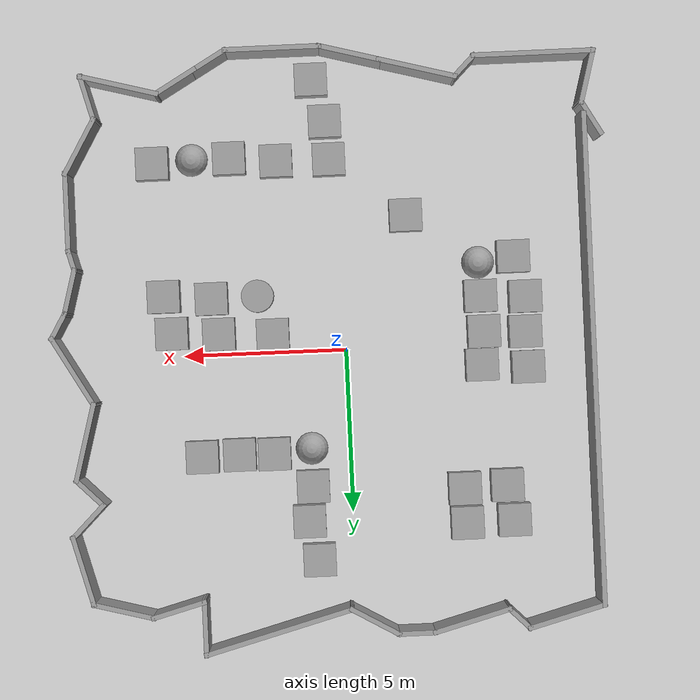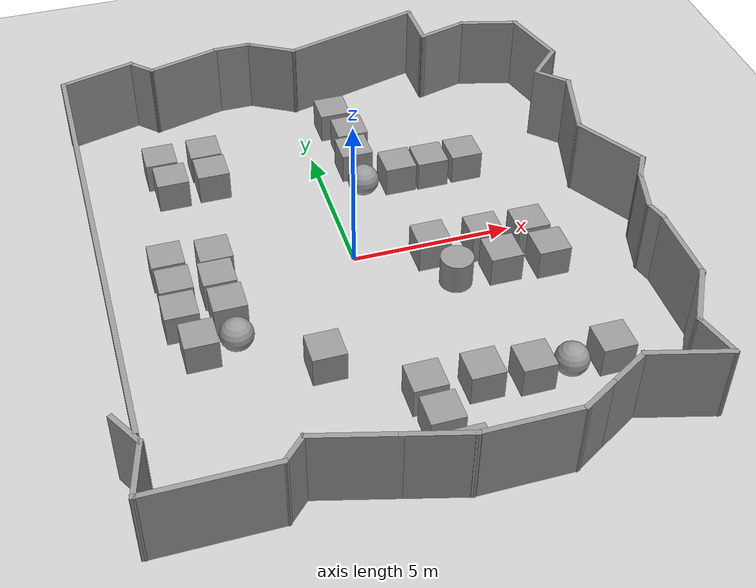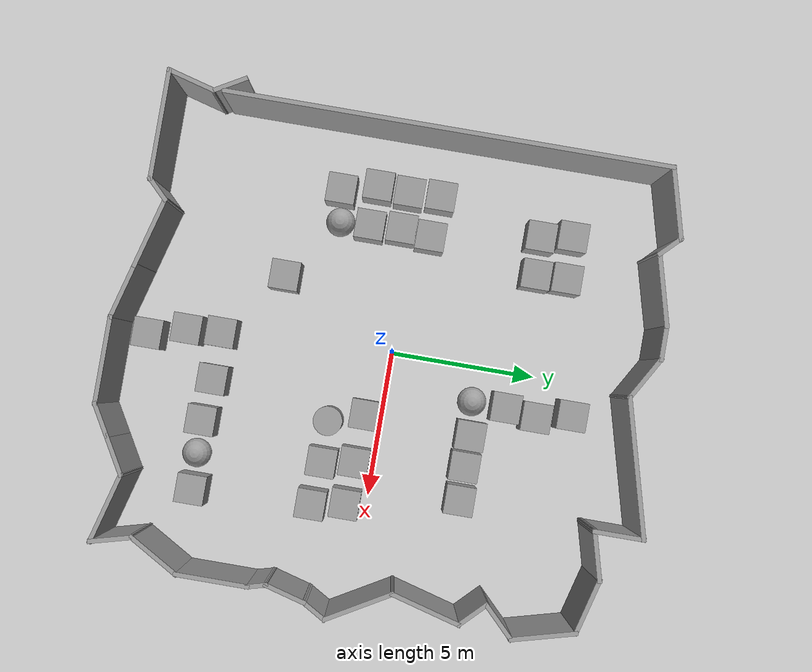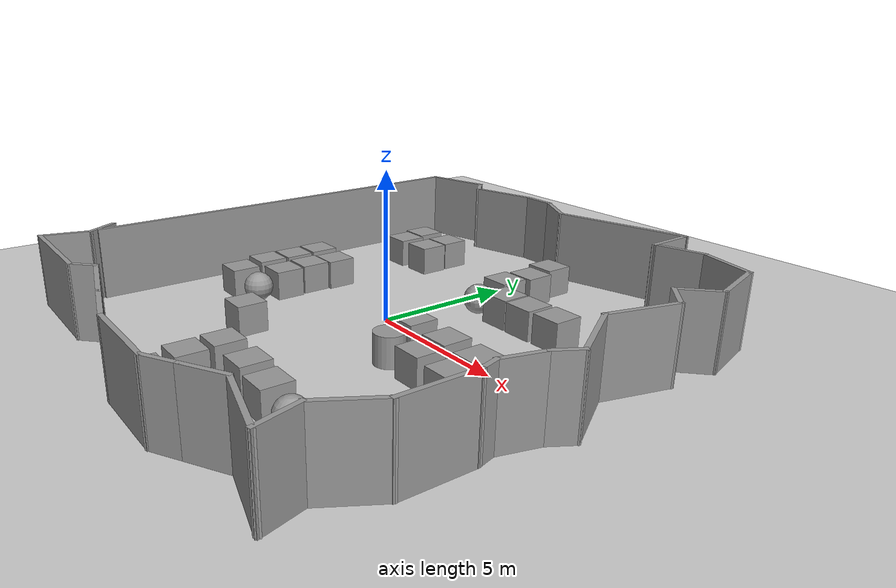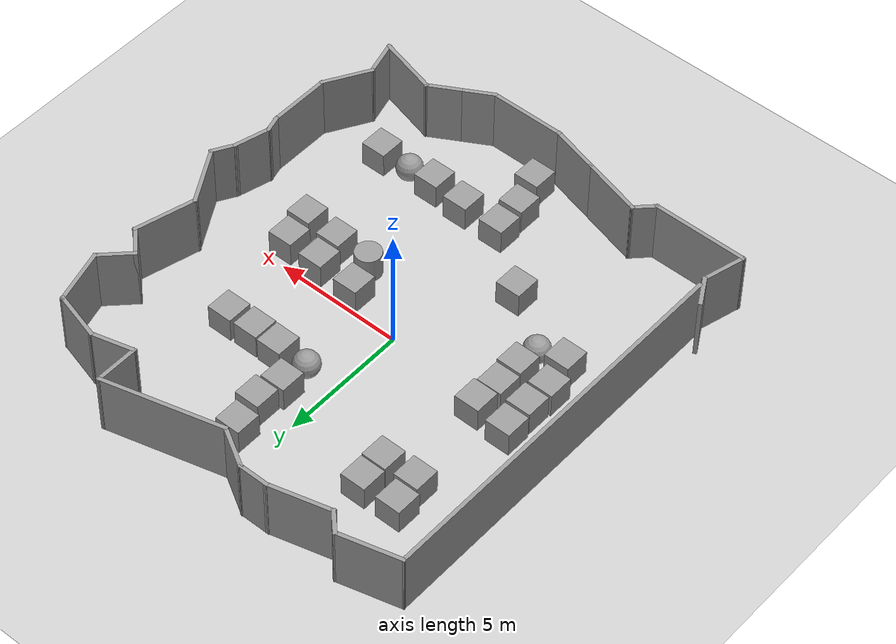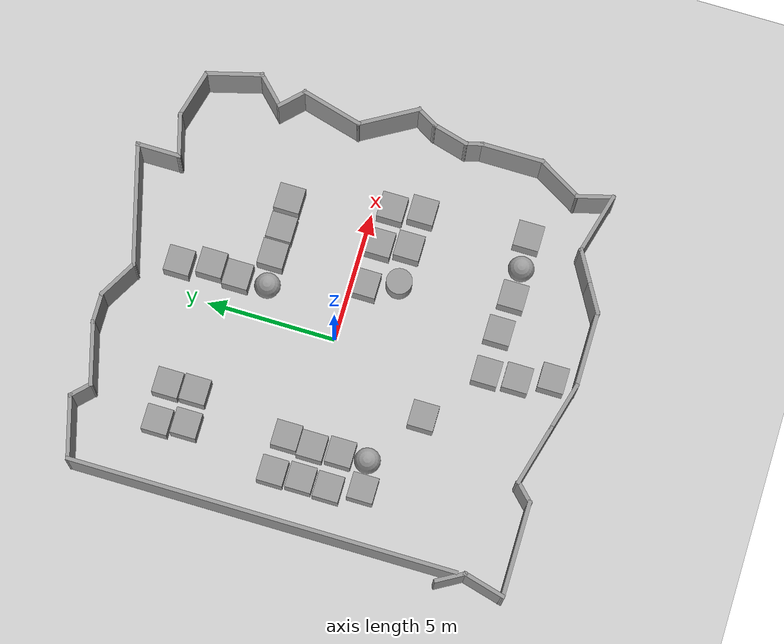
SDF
<sdf version="1.7">
 <world name="simple">
  <plugin name="gazebo_ros_state" filename="libgazebo_ros_state.so"><update_rate>60</update_rate></plugin>
  <light name="sun" type="directional">
   <pose>0 0 10 0 -0 0</pose>
   <diffuse>0.8 0.8 0.8 1</diffuse>
   <specular>0.2 0.2 0.2 1</specular>
   <attenuation>
    <range>1000</range>
    <constant>0.9</constant>
    <linear>0.01</linear>
    <quadratic>0.001</quadratic>
   </attenuation>
   <direction>-0.5 0.1 -0.9</direction>
   <spot><inner_angle>0</inner_angle><outer_angle>0</outer_angle><falloff>0</falloff></spot>
  </light>
  <model name="ground_plane">
   <static>1</static>
   <link name="link">
    <collision name="collision">
     <geometry><plane><normal>0 0 1</normal><size>100 100</size></plane></geometry>
     <surface><friction><ode><mu>100</mu><mu2>50</mu2></ode></friction></surface>
    </collision>
    <visual name="visual">
     <cast_shadows>0</cast_shadows>
     <geometry><plane><normal>0 0 1</normal><size>100 100</size></plane></geometry>
     <material>
      <script><uri>file://media/materials/scripts/gazebo.material</uri><name>Gazebo/Grey</name></script>
     </material>
    </visual>
   </link>
  </model>
  <gravity>0 0 -9.8</gravity>
  <magnetic_field>6e-06 2.3e-05 -4.2e-05</magnetic_field>
  <atmosphere type="adiabatic"/>
  <physics type="ode">
   <max_step_size>0.001</max_step_size>
   <real_time_factor>1</real_time_factor>
   <real_time_update_rate>1000</real_time_update_rate>
  </physics>
  <scene><ambient>0.4 0.4 0.4 1</ambient><background>0.7 0.7 0.7 1</background><shadows>1</shadows></scene>
  <audio><device>default</device></audio>
  <spherical_coordinates>
   <surface_model>EARTH_WGS84</surface_model>
   <latitude_deg>43.5655</latitude_deg>
   <longitude_deg>1.474</longitude_deg>
   <elevation>150</elevation>
   <heading_deg>180</heading_deg>
  </spherical_coordinates>
  <model name="unit_box">
   <pose>1.09447 6.4086 0.5 0 -0 0</pose>
   <link name="link">
    <inertial>
     <mass>1</mass>
     <inertia>
      <ixx>0.166667</ixx>
      <ixy>0</ixy>
      <ixz>0</ixz>
      <iyy>0.166667</iyy>
      <iyz>0</iyz>
      <izz>0.166667</izz>
     </inertia>
    </inertial>
    <collision name="collision"><geometry><box><size>1 1 1</size></box></geometry></collision>
    <visual name="visual">
     <geometry><box><size>1 1 1</size></box></geometry>
     <material>
      <script><name>Gazebo/Grey</name><uri>file://media/materials/scripts/gazebo.material</uri></script>
     </material>
    </visual>
   </link>
  </model>
  <model name="unit_box_clone">
   <pose>1.35441 5.21111 0.5 0 -0 0</pose>
   <link name="link">
    <inertial>
     <mass>1</mass>
     <inertia>
      <ixx>0.166667</ixx>
      <ixy>0</ixy>
      <ixz>0</ixz>
      <iyy>0.166667</iyy>
      <iyz>0</iyz>
      <izz>0.166667</izz>
     </inertia>
    </inertial>
    <collision name="collision"><geometry><box><size>1 1 1</size></box></geometry></collision>
    <visual name="visual">
     <geometry><box><size>1 1 1</size></box></geometry>
     <material>
      <script><name>Gazebo/Grey</name><uri>file://media/materials/scripts/gazebo.material</uri></script>
     </material>
    </visual>
   </link>
  </model>
  <model name="unit_box_clone_0">
   <pose>1.20117 4.14572 0.5 0 -0 0</pose>
   <link name="link">
    <inertial>
     <mass>1</mass>
     <inertia>
      <ixx>0.166667</ixx>
      <ixy>0</ixy>
      <ixz>0</ixz>
      <iyy>0.166667</iyy>
      <iyz>0</iyz>
      <izz>0.166667</izz>
     </inertia>
    </inertial>
    <collision name="collision"><geometry><box><size>1 1 1</size></box></geometry></collision>
    <visual name="visual">
     <geometry><box><size>1 1 1</size></box></geometry>
     <material>
      <script><name>Gazebo/Grey</name><uri>file://media/materials/scripts/gazebo.material</uri></script>
     </material>
    </visual>
   </link>
  </model>
  <model name="unit_box_clone_2">
   <pose>2.34551 3.10228 0.5 0 -0 0</pose>
   <link name="link">
    <inertial>
     <mass>1</mass>
     <inertia>
      <ixx>0.166667</ixx>
      <ixy>0</ixy>
      <ixz>0</ixz>
      <iyy>0.166667</iyy>
      <iyz>0</iyz>
      <izz>0.166667</izz>
     </inertia>
    </inertial>
    <collision name="collision"><geometry><box><size>1 1 1</size></box></geometry></collision>
    <visual name="visual">
     <geometry><box><size>1 1 1</size></box></geometry>
     <material>
      <script><name>Gazebo/Grey</name><uri>file://media/materials/scripts/gazebo.material</uri></script>
     </material>
    </visual>
   </link>
  </model>
  <model name="unit_box_clone_3">
   <pose>3.41569 3.08183 0.5 0 -0 0</pose>
   <link name="link">
    <inertial>
     <mass>1</mass>
     <inertia>
      <ixx>0.166667</ixx>
      <ixy>0</ixy>
      <ixz>0</ixz>
      <iyy>0.166667</iyy>
      <iyz>0</iyz>
      <izz>0.166667</izz>
     </inertia>
    </inertial>
    <collision name="collision"><geometry><box><size>1 1 1</size></box></geometry></collision>
    <visual name="visual">
     <geometry><box><size>1 1 1</size></box></geometry>
     <material>
      <script><name>Gazebo/Grey</name><uri>file://media/materials/scripts/gazebo.material</uri></script>
     </material>
    </visual>
   </link>
  </model>
  <model name="unit_box_clone_4">
   <pose>4.56225 3.10641 0.5 0 -0 0</pose>
   <link name="link">
    <inertial>
     <mass>1</mass>
     <inertia>
      <ixx>0.166667</ixx>
      <ixy>0</ixy>
      <ixz>0</ixz>
      <iyy>0.166667</iyy>
      <iyz>0</iyz>
      <izz>0.166667</izz>
     </inertia>
    </inertial>
    <collision name="collision"><geometry><box><size>1 1 1</size></box></geometry></collision>
    <visual name="visual">
     <geometry><box><size>1 1 1</size></box></geometry>
     <material>
      <script><name>Gazebo/Grey</name><uri>file://media/materials/scripts/gazebo.material</uri></script>
     </material>
    </visual>
   </link>
  </model>
  <model name="unit_box_clone_5">
   <pose>5.34068 -0.717246 0.5 0 -0 0</pose>
   <link name="link">
    <inertial>
     <mass>1</mass>
     <inertia>
      <ixx>0.166667</ixx>
      <ixy>0</ixy>
      <ixz>0</ixz>
      <iyy>0.166667</iyy>
      <iyz>0</iyz>
      <izz>0.166667</izz>
     </inertia>
    </inertial>
    <collision name="collision"><geometry><box><size>1 1 1</size></box></geometry></collision>
    <visual name="visual">
     <geometry><box><size>1 1 1</size></box></geometry>
     <material>
      <script><name>Gazebo/Grey</name><uri>file://media/materials/scripts/gazebo.material</uri></script>
     </material>
    </visual>
   </link>
  </model>
  <model name="unit_box_clone_6">
   <pose>5.54501 -1.86094 0.5 0 -0 0</pose>
   <link name="link">
    <inertial>
     <mass>1</mass>
     <inertia>
      <ixx>0.166667</ixx>
      <ixy>0</ixy>
      <ixz>0</ixz>
      <iyy>0.166667</iyy>
      <iyz>0</iyz>
      <izz>0.166667</izz>
     </inertia>
    </inertial>
    <collision name="collision"><geometry><box><size>1 1 1</size></box></geometry></collision>
    <visual name="visual">
     <geometry><box><size>1 1 1</size></box></geometry>
     <material>
      <script><name>Gazebo/Grey</name><uri>file://media/materials/scripts/gazebo.material</uri></script>
     </material>
    </visual>
   </link>
  </model>
  <model name="unit_box_clone_7">
   <pose>3.89664 -0.641551 0.5 0 -0 0</pose>
   <link name="link">
    <inertial>
     <mass>1</mass>
     <inertia>
      <ixx>0.166667</ixx>
      <ixy>0</ixy>
      <ixz>0</ixz>
      <iyy>0.166667</iyy>
      <iyz>0</iyz>
      <izz>0.166667</izz>
     </inertia>
    </inertial>
    <collision name="collision"><geometry><box><size>1 1 1</size></box></geometry></collision>
    <visual name="visual">
     <geometry><box><size>1 1 1</size></box></geometry>
     <material>
      <script><name>Gazebo/Grey</name><uri>file://media/materials/scripts/gazebo.material</uri></script>
     </material>
    </visual>
   </link>
  </model>
  <model name="unit_box_clone_8">
   <pose>2.24404 -0.554472 0.5 0 -0 0</pose>
   <link name="link">
    <inertial>
     <mass>1</mass>
     <inertia>
      <ixx>0.166667</ixx>
      <ixy>0</ixy>
      <ixz>0</ixz>
      <iyy>0.166667</iyy>
      <iyz>0</iyz>
      <izz>0.166667</izz>
     </inertia>
    </inertial>
    <collision name="collision"><geometry><box><size>1 1 1</size></box></geometry></collision>
    <visual name="visual">
     <geometry><box><size>1 1 1</size></box></geometry>
     <material>
      <script><name>Gazebo/Grey</name><uri>file://media/materials/scripts/gazebo.material</uri></script>
     </material>
    </visual>
   </link>
  </model>
  <model name="unit_box_clone_9">
   <pose>4.0808 -1.73862 0.5 0 -0 0</pose>
   <link name="link">
    <inertial>
     <mass>1</mass>
     <inertia>
      <ixx>0.166667</ixx>
      <ixy>0</ixy>
      <ixz>0</ixz>
      <iyy>0.166667</iyy>
      <iyz>0</iyz>
      <izz>0.166667</izz>
     </inertia>
    </inertial>
    <collision name="collision"><geometry><box><size>1 1 1</size></box></geometry></collision>
    <visual name="visual">
     <geometry><box><size>1 1 1</size></box></geometry>
     <material>
      <script><name>Gazebo/Grey</name><uri>file://media/materials/scripts/gazebo.material</uri></script>
     </material>
    </visual>
   </link>
  </model>
  <model name="unit_box_clone_11">
   <pose>5.7245 -5.95763 0.5 0 -0 0</pose>
   <link name="link">
    <inertial>
     <mass>1</mass>
     <inertia>
      <ixx>0.166667</ixx>
      <ixy>0</ixy>
      <ixz>0</ixz>
      <iyy>0.166667</iyy>
      <iyz>0</iyz>
      <izz>0.166667</izz>
     </inertia>
    </inertial>
    <collision name="collision"><geometry><box><size>1 1 1</size></box></geometry></collision>
    <visual name="visual">
     <geometry><box><size>1 1 1</size></box></geometry>
     <material>
      <script><name>Gazebo/Grey</name><uri>file://media/materials/scripts/gazebo.material</uri></script>
     </material>
    </visual>
   </link>
  </model>
  <model name="unit_box_clone_13">
   <pose>3.36205 -6.0208 0.5 0 -0 0</pose>
   <link name="link">
    <inertial>
     <mass>1</mass>
     <inertia>
      <ixx>0.166667</ixx>
      <ixy>0</ixy>
      <ixz>0</ixz>
      <iyy>0.166667</iyy>
      <iyz>0</iyz>
      <izz>0.166667</izz>
     </inertia>
    </inertial>
    <collision name="collision"><geometry><box><size>1 1 1</size></box></geometry></collision>
    <visual name="visual">
     <geometry><box><size>1 1 1</size></box></geometry>
     <material>
      <script><name>Gazebo/Grey</name><uri>file://media/materials/scripts/gazebo.material</uri></script>
     </material>
    </visual>
   </link>
  </model>
  <model name="unit_box_clone_14">
   <pose>1.9274 -5.88453 0.5 0 -0 0</pose>
   <link name="link">
    <inertial>
     <mass>1</mass>
     <inertia>
      <ixx>0.166667</ixx>
      <ixy>0</ixy>
      <ixz>0</ixz>
      <iyy>0.166667</iyy>
      <iyz>0</iyz>
      <izz>0.166667</izz>
     </inertia>
    </inertial>
    <collision name="collision"><geometry><box><size>1 1 1</size></box></geometry></collision>
    <visual name="visual">
     <geometry><box><size>1 1 1</size></box></geometry>
     <material>
      <script><name>Gazebo/Grey</name><uri>file://media/materials/scripts/gazebo.material</uri></script>
     </material>
    </visual>
   </link>
  </model>
  <model name="unit_box_clone_15">
   <pose>0.303527 -5.86364 0.5 0 -0 0</pose>
   <link name="link">
    <inertial>
     <mass>1</mass>
     <inertia>
      <ixx>0.166667</ixx>
      <ixy>0</ixy>
      <ixz>0</ixz>
      <iyy>0.166667</iyy>
      <iyz>0</iyz>
      <izz>0.166667</izz>
     </inertia>
    </inertial>
    <collision name="collision"><geometry><box><size>1 1 1</size></box></geometry></collision>
    <visual name="visual">
     <geometry><box><size>1 1 1</size></box></geometry>
     <material>
      <script><name>Gazebo/Grey</name><uri>file://media/materials/scripts/gazebo.material</uri></script>
     </material>
    </visual>
   </link>
  </model>
  <model name="unit_box_clone_16">
   <pose>0.381954 -7.03221 0.5 0 -0 0</pose>
   <link name="link">
    <inertial>
     <mass>1</mass>
     <inertia>
      <ixx>0.166667</ixx>
      <ixy>0</ixy>
      <ixz>0</ixz>
      <iyy>0.166667</iyy>
      <iyz>0</iyz>
      <izz>0.166667</izz>
     </inertia>
    </inertial>
    <collision name="collision"><geometry><box><size>1 1 1</size></box></geometry></collision>
    <visual name="visual">
     <geometry><box><size>1 1 1</size></box></geometry>
     <material>
      <script><name>Gazebo/Grey</name><uri>file://media/materials/scripts/gazebo.material</uri></script>
     </material>
    </visual>
   </link>
  </model>
  <model name="unit_box_clone_17">
   <pose>0.751216 -8.3232 0.5 0 -0 0</pose>
   <link name="link">
    <inertial>
     <mass>1</mass>
     <inertia>
      <ixx>0.166667</ixx>
      <ixy>0</ixy>
      <ixz>0</ixz>
      <iyy>0.166667</iyy>
      <iyz>0</iyz>
      <izz>0.166667</izz>
     </inertia>
    </inertial>
    <collision name="collision"><geometry><box><size>1 1 1</size></box></geometry></collision>
    <visual name="visual">
     <geometry><box><size>1 1 1</size></box></geometry>
     <material>
      <script><name>Gazebo/Grey</name><uri>file://media/materials/scripts/gazebo.material</uri></script>
     </material>
    </visual>
   </link>
  </model>
  <model name="unit_box_clone_18">
   <pose>-4.13638 0.632269 0.5 0 -0 0</pose>
   <link name="link">
    <inertial>
     <mass>1</mass>
     <inertia>
      <ixx>0.166667</ixx>
      <ixy>0</ixy>
      <ixz>0</ixz>
      <iyy>0.166667</iyy>
      <iyz>0</iyz>
      <izz>0.166667</izz>
     </inertia>
    </inertial>
    <collision name="collision"><geometry><box><size>1 1 1</size></box></geometry></collision>
    <visual name="visual">
     <geometry><box><size>1 1 1</size></box></geometry>
     <material>
      <script><name>Gazebo/Grey</name><uri>file://media/materials/scripts/gazebo.material</uri></script>
     </material>
    </visual>
   </link>
  </model>
  <model name="unit_box_clone_19">
   <pose>-4.23779 -0.390968 0.5 0 -0 0</pose>
   <link name="link">
    <inertial>
     <mass>1</mass>
     <inertia>
      <ixx>0.166667</ixx>
      <ixy>0</ixy>
      <ixz>0</ixz>
      <iyy>0.166667</iyy>
      <iyz>0</iyz>
      <izz>0.166667</izz>
     </inertia>
    </inertial>
    <collision name="collision"><geometry><box><size>1 1 1</size></box></geometry></collision>
    <visual name="visual">
     <geometry><box><size>1 1 1</size></box></geometry>
     <material>
      <script><name>Gazebo/Grey</name><uri>file://media/materials/scripts/gazebo.material</uri></script>
     </material>
    </visual>
   </link>
  </model>
  <model name="unit_box_clone_20">
   <pose>-4.17367 -1.47802 0.5 0 -0 0</pose>
   <link name="link">
    <inertial>
     <mass>1</mass>
     <inertia>
      <ixx>0.166667</ixx>
      <ixy>0</ixy>
      <ixz>0</ixz>
      <iyy>0.166667</iyy>
      <iyz>0</iyz>
      <izz>0.166667</izz>
     </inertia>
    </inertial>
    <collision name="collision"><geometry><box><size>1 1 1</size></box></geometry></collision>
    <visual name="visual">
     <geometry><box><size>1 1 1</size></box></geometry>
     <material>
      <script><name>Gazebo/Grey</name><uri>file://media/materials/scripts/gazebo.material</uri></script>
     </material>
    </visual>
   </link>
  </model>
  <model name="unit_box_clone_22">
   <pose>-5.22673 -2.64818 0.5 0 -0 0</pose>
   <link name="link">
    <inertial>
     <mass>1</mass>
     <inertia>
      <ixx>0.166667</ixx>
      <ixy>0</ixy>
      <ixz>0</ixz>
      <iyy>0.166667</iyy>
      <iyz>0</iyz>
      <izz>0.166667</izz>
     </inertia>
    </inertial>
    <collision name="collision"><geometry><box><size>1 1 1</size></box></geometry></collision>
    <visual name="visual">
     <geometry><box><size>1 1 1</size></box></geometry>
     <material>
      <script><name>Gazebo/Grey</name><uri>file://media/materials/scripts/gazebo.material</uri></script>
     </material>
    </visual>
   </link>
  </model>
  <model name="unit_box_clone_23">
   <pose>-5.54798 -1.40919 0.5 0 -0 0</pose>
   <link name="link">
    <inertial>
     <mass>1</mass>
     <inertia>
      <ixx>0.166667</ixx>
      <ixy>0</ixy>
      <ixz>0</ixz>
      <iyy>0.166667</iyy>
      <iyz>0</iyz>
      <izz>0.166667</izz>
     </inertia>
    </inertial>
    <collision name="collision"><geometry><box><size>1 1 1</size></box></geometry></collision>
    <visual name="visual">
     <geometry><box><size>1 1 1</size></box></geometry>
     <material>
      <script><name>Gazebo/Grey</name><uri>file://media/materials/scripts/gazebo.material</uri></script>
     </material>
    </visual>
   </link>
  </model>
  <model name="unit_box_clone_24">
   <pose>-5.50343 -0.332856 0.5 0 -0 0</pose>
   <link name="link">
    <inertial>
     <mass>1</mass>
     <inertia>
      <ixx>0.166667</ixx>
      <ixy>0</ixy>
      <ixz>0</ixz>
      <iyy>0.166667</iyy>
      <iyz>0</iyz>
      <izz>0.166667</izz>
     </inertia>
    </inertial>
    <collision name="collision"><geometry><box><size>1 1 1</size></box></geometry></collision>
    <visual name="visual">
     <geometry><box><size>1 1 1</size></box></geometry>
     <material>
      <script><name>Gazebo/Grey</name><uri>file://media/materials/scripts/gazebo.material</uri></script>
     </material>
    </visual>
   </link>
  </model>
  <model name="unit_box_clone_25">
   <pose>-5.54966 0.756641 0.5 0 -0 0</pose>
   <link name="link">
    <inertial>
     <mass>1</mass>
     <inertia>
      <ixx>0.166667</ixx>
      <ixy>0</ixy>
      <ixz>0</ixz>
      <iyy>0.166667</iyy>
      <iyz>0</iyz>
      <izz>0.166667</izz>
     </inertia>
    </inertial>
    <collision name="collision"><geometry><box><size>1 1 1</size></box></geometry></collision>
    <visual name="visual">
     <geometry><box><size>1 1 1</size></box></geometry>
     <material>
      <script><name>Gazebo/Grey</name><uri>file://media/materials/scripts/gazebo.material</uri></script>
     </material>
    </visual>
   </link>
  </model>
  <model name="unit_box_clone_26">
   <pose>-3.45012 4.40873 0.5 0 -0 0</pose>
   <link name="link">
    <inertial>
     <mass>1</mass>
     <inertia>
      <ixx>0.166667</ixx>
      <ixy>0</ixy>
      <ixz>0</ixz>
      <iyy>0.166667</iyy>
      <iyz>0</iyz>
      <izz>0.166667</izz>
     </inertia>
    </inertial>
    <collision name="collision"><geometry><box><size>1 1 1</size></box></geometry></collision>
    <visual name="visual">
     <geometry><box><size>1 1 1</size></box></geometry>
     <material>
      <script><name>Gazebo/Grey</name><uri>file://media/materials/scripts/gazebo.material</uri></script>
     </material>
    </visual>
   </link>
  </model>
  <model name="unit_box_clone_27">
   <pose>-3.48455 5.46324 0.5 0 -0 0</pose>
   <link name="link">
    <inertial>
     <mass>1</mass>
     <inertia>
      <ixx>0.166667</ixx>
      <ixy>0</ixy>
      <ixz>0</ixz>
      <iyy>0.166667</iyy>
      <iyz>0</iyz>
      <izz>0.166667</izz>
     </inertia>
    </inertial>
    <collision name="collision"><geometry><box><size>1 1 1</size></box></geometry></collision>
    <visual name="visual">
     <geometry><box><size>1 1 1</size></box></geometry>
     <material>
      <script><name>Gazebo/Grey</name><uri>file://media/materials/scripts/gazebo.material</uri></script>
     </material>
    </visual>
   </link>
  </model>
  <model name="unit_box_clone_28">
   <pose>-4.93112 5.4318 0.5 0 -0 0</pose>
   <link name="link">
    <inertial>
     <mass>1</mass>
     <inertia>
      <ixx>0.166667</ixx>
      <ixy>0</ixy>
      <ixz>0</ixz>
      <iyy>0.166667</iyy>
      <iyz>0</iyz>
      <izz>0.166667</izz>
     </inertia>
    </inertial>
    <collision name="collision"><geometry><box><size>1 1 1</size></box></geometry></collision>
    <visual name="visual">
     <geometry><box><size>1 1 1</size></box></geometry>
     <material>
      <script><name>Gazebo/Grey</name><uri>file://media/materials/scripts/gazebo.material</uri></script>
     </material>
    </visual>
   </link>
  </model>
  <model name="unit_box_clone_29">
   <pose>-4.75554 4.35696 0.5 0 -0 0</pose>
   <link name="link">
    <inertial>
     <mass>1</mass>
     <inertia>
      <ixx>0.166667</ixx>
      <ixy>0</ixy>
      <ixz>0</ixz>
      <iyy>0.166667</iyy>
      <iyz>0</iyz>
      <izz>0.166667</izz>
     </inertia>
    </inertial>
    <collision name="collision"><geometry><box><size>1 1 1</size></box></geometry></collision>
    <visual name="visual">
     <geometry><box><size>1 1 1</size></box></geometry>
     <material>
      <script><name>Gazebo/Grey</name><uri>file://media/materials/scripts/gazebo.material</uri></script>
     </material>
    </visual>
   </link>
  </model>
  <model name="Untitled">
   <pose>0.47596 -0.08968 0 0 -0 0</pose>
   <link name="Wall_10">
    <collision name="Wall_10_Collision">
     <geometry><box><size>1.75 0.15 2.5</size></box></geometry>
     <pose>0 0 1.25 0 -0 0</pose>
    </collision>
    <visual name="Wall_10_Visual">
     <pose>0 0 1.25 0 -0 0</pose>
     <geometry><box><size>1.75 0.15 2.5</size></box></geometry>
     <material>
      <script><uri>file://media/materials/scripts/gazebo.material</uri><name>Gazebo/Grey</name></script>
      <ambient>1 1 1 1</ambient>
     </material>
     <meta><layer>0</layer></meta>
    </visual>
    <pose>4.14914 8.31692 0 0 -0 -1.5708</pose>
   </link>
   <link name="Wall_11">
    <collision name="Wall_11_Collision">
     <geometry><box><size>1.75 0.15 2.5</size></box></geometry>
     <pose>0 0 1.25 0 -0 0</pose>
    </collision>
    <visual name="Wall_11_Visual">
     <pose>0 0 1.25 0 -0 0</pose>
     <geometry><box><size>1.75 0.15 2.5</size></box></geometry>
     <material>
      <script><uri>file://media/materials/scripts/gazebo.material</uri><name>Gazebo/Grey</name></script>
      <ambient>1 1 1 1</ambient>
     </material>
     <meta><layer>0</layer></meta>
    </visual>
    <pose>4.92188 7.72398 0 0 -0 0.261799</pose>
   </link>
   <link name="Wall_12">
    <collision name="Wall_12_Collision">
     <geometry><box><size>2 0.15 2.5</size></box></geometry>
     <pose>0 0 1.25 0 -0 0</pose>
    </collision>
    <visual name="Wall_12_Visual">
     <pose>0 0 1.25 0 -0 0</pose>
     <geometry><box><size>2 0.15 2.5</size></box></geometry>
     <material>
      <script><uri>file://media/materials/scripts/gazebo.material</uri><name>Gazebo/Grey</name></script>
      <ambient>1 1 1 1</ambient>
     </material>
     <meta><layer>0</layer></meta>
    </visual>
    <pose>6.58811 7.69162 0 0 -0 -0.261799</pose>
   </link>
   <link name="Wall_13">
    <collision name="Wall_13_Collision">
     <geometry><box><size>2.25 0.15 2.5</size></box></geometry>
     <pose>0 0 1.25 0 -0 0</pose>
    </collision>
    <visual name="Wall_13_Visual">
     <pose>0 0 1.25 0 -0 0</pose>
     <geometry><box><size>2.25 0.15 2.5</size></box></geometry>
     <material>
      <script><uri>file://media/materials/scripts/gazebo.material</uri><name>Gazebo/Grey</name></script>
      <ambient>1 1 1 1</ambient>
     </material>
     <meta><layer>0</layer></meta>
    </visual>
    <pose>7.75335 6.43799 0 0 -0 -1.309</pose>
   </link>
   <link name="Wall_14">
    <collision name="Wall_14_Collision">
     <geometry><box><size>1.5 0.15 2.5</size></box></geometry>
     <pose>0 0 1.25 0 -0 0</pose>
    </collision>
    <visual name="Wall_14_Visual">
     <pose>0 0 1.25 0 -0 0</pose>
     <geometry><box><size>1.5 0.15 2.5</size></box></geometry>
     <material>
      <script><uri>file://media/materials/scripts/gazebo.material</uri><name>Gazebo/Grey</name></script>
      <ambient>1 1 1 1</ambient>
     </material>
     <meta><layer>0</layer></meta>
    </visual>
    <pose>7.54781 4.94648 0 0 -0 -2.35619</pose>
   </link>
   <link name="Wall_15">
    <collision name="Wall_15_Collision">
     <geometry><box><size>1.25 0.15 2.5</size></box></geometry>
     <pose>0 0 1.25 0 -0 0</pose>
    </collision>
    <visual name="Wall_15_Visual">
     <pose>0 0 1.25 0 -0 0</pose>
     <geometry><box><size>1.25 0.15 2.5</size></box></geometry>
     <material>
      <script><uri>file://media/materials/scripts/gazebo.material</uri><name>Gazebo/Grey</name></script>
      <ambient>1 1 1 1</ambient>
     </material>
     <meta><layer>0</layer></meta>
    </visual>
    <pose>7.45942 4.08027 0 0 -0 -0.785398</pose>
   </link>
   <link name="Wall_16">
    <collision name="Wall_16_Collision">
     <geometry><box><size>2.5 0.15 2.5</size></box></geometry>
     <pose>0 0 1.25 0 -0 0</pose>
    </collision>
    <visual name="Wall_16_Visual">
     <pose>0 0 1.25 0 -0 0</pose>
     <geometry><box><size>2.5 0.15 2.5</size></box></geometry>
     <material>
      <script><uri>file://media/materials/scripts/gazebo.material</uri><name>Gazebo/Grey</name></script>
      <ambient>1 1 1 1</ambient>
     </material>
     <meta><layer>0</layer></meta>
    </visual>
    <pose>7.54422 2.5564 0 0 -0 -1.8326</pose>
   </link>
   <link name="Wall_17">
    <collision name="Wall_17_Collision">
     <geometry><box><size>2.5 0.15 2.5</size></box></geometry>
     <pose>0 0 1.25 0 -0 0</pose>
    </collision>
    <visual name="Wall_17_Visual">
     <pose>0 0 1.25 0 -0 0</pose>
     <geometry><box><size>2.5 0.15 2.5</size></box></geometry>
     <material>
      <script><uri>file://media/materials/scripts/gazebo.material</uri><name>Gazebo/Grey</name></script>
      <ambient>1 1 1 1</ambient>
     </material>
     <meta><layer>0</layer></meta>
    </visual>
    <pose>7.82761 0.403854 0 0 -0 -1.0472</pose>
   </link>
   <link name="Wall_18">
    <collision name="Wall_18_Collision">
     <geometry><box><size>1 0.15 2.5</size></box></geometry>
     <pose>0 0 1.25 0 -0 0</pose>
    </collision>
    <visual name="Wall_18_Visual">
     <pose>0 0 1.25 0 -0 0</pose>
     <geometry><box><size>1 0.15 2.5</size></box></geometry>
     <material>
      <script><uri>file://media/materials/scripts/gazebo.material</uri><name>Gazebo/Grey</name></script>
      <ambient>1 1 1 1</ambient>
     </material>
     <meta><layer>0</layer></meta>
    </visual>
    <pose>8.20261 -0.981786 0 0 -0 -2.0944</pose>
   </link>
   <link name="Wall_19">
    <collision name="Wall_19_Collision">
     <geometry><box><size>1.5 0.15 2.5</size></box></geometry>
     <pose>0 0 1.25 0 -0 0</pose>
    </collision>
    <visual name="Wall_19_Visual">
     <pose>0 0 1.25 0 -0 0</pose>
     <geometry><box><size>1.5 0.15 2.5</size></box></geometry>
     <material>
      <script><uri>file://media/materials/scripts/gazebo.material</uri><name>Gazebo/Grey</name></script>
      <ambient>1 1 1 1</ambient>
     </material>
     <meta><layer>0</layer></meta>
    </visual>
    <pose>7.8154 -2.00185 0 0 -0 -1.8326</pose>
   </link>
   <link name="Wall_2">
    <collision name="Wall_2_Collision">
     <geometry><box><size>15 0.15 2.5</size></box></geometry>
     <pose>0 0 1.25 0 -0 0</pose>
    </collision>
    <visual name="Wall_2_Visual">
     <pose>0 0 1.25 0 -0 0</pose>
     <geometry><box><size>15 0.15 2.5</size></box></geometry>
     <material>
      <script><uri>file://media/materials/scripts/gazebo.material</uri><name>Gazebo/Grey</name></script>
      <ambient>1 1 1 1</ambient>
     </material>
     <meta><layer>0</layer></meta>
    </visual>
    <pose>-7.92065 0.685944 0 0 -0 -1.5708</pose>
   </link>
   <link name="Wall_20">
    <collision name="Wall_20_Collision">
     <geometry><box><size>0.75 0.15 2.5</size></box></geometry>
     <pose>0 0 1.25 0 -0 0</pose>
    </collision>
    <visual name="Wall_20_Visual">
     <pose>0 0 1.25 0 -0 0</pose>
     <geometry><box><size>0.75 0.15 2.5</size></box></geometry>
     <material>
      <script><uri>file://media/materials/scripts/gazebo.material</uri><name>Gazebo/Grey</name></script>
      <ambient>1 1 1 1</ambient>
     </material>
     <meta><layer>0</layer></meta>
    </visual>
    <pose>7.71835 -2.94362 0 0 -0 -1.309</pose>
   </link>
   <link name="Wall_21">
    <collision name="Wall_21_Collision">
     <geometry><box><size>2.5 0.15 2.5</size></box></geometry>
     <pose>0 0 1.25 0 -0 0</pose>
    </collision>
    <visual name="Wall_21_Visual">
     <pose>0 0 1.25 0 -0 0</pose>
     <geometry><box><size>2.5 0.15 2.5</size></box></geometry>
     <material>
      <script><uri>file://media/materials/scripts/gazebo.material</uri><name>Gazebo/Grey</name></script>
      <ambient>1 1 1 1</ambient>
     </material>
     <meta><layer>0</layer></meta>
    </visual>
    <pose>7.79599 -4.4084 0 0 -0 -1.5708</pose>
   </link>
   <link name="Wall_22">
    <collision name="Wall_22_Collision">
     <geometry><box><size>2 0.15 2.5</size></box></geometry>
     <pose>0 0 1.25 0 -0 0</pose>
    </collision>
    <visual name="Wall_22_Visual">
     <pose>0 0 1.25 0 -0 0</pose>
     <geometry><box><size>2 0.15 2.5</size></box></geometry>
     <material>
      <script><uri>file://media/materials/scripts/gazebo.material</uri><name>Gazebo/Grey</name></script>
      <ambient>1 1 1 1</ambient>
     </material>
     <meta><layer>0</layer></meta>
    </visual>
    <pose>7.33349 -6.38448 0 0 -0 -2.0944</pose>
   </link>
   <link name="Wall_23">
    <collision name="Wall_23_Collision">
     <geometry><box><size>1.5 0.15 2.5</size></box></geometry>
     <pose>0 0 1.25 0 -0 0</pose>
    </collision>
    <visual name="Wall_23_Visual">
     <pose>0 0 1.25 0 -0 0</pose>
     <geometry><box><size>1.5 0.15 2.5</size></box></geometry>
     <material>
      <script><uri>file://media/materials/scripts/gazebo.material</uri><name>Gazebo/Grey</name></script>
      <ambient>1 1 1 1</ambient>
     </material>
     <meta><layer>0</layer></meta>
    </visual>
    <pose>7.0457 -7.83755 0 0 -0 -1.309</pose>
   </link>
   <link name="Wall_25">
    <collision name="Wall_25_Collision">
     <geometry><box><size>2.5 0.15 2.5</size></box></geometry>
     <pose>0 0 1.25 0 -0 0</pose>
    </collision>
    <visual name="Wall_25_Visual">
     <pose>0 0 1.25 0 -0 0</pose>
     <geometry><box><size>2.5 0.15 2.5</size></box></geometry>
     <material>
      <script><uri>file://media/materials/scripts/gazebo.material</uri><name>Gazebo/Grey</name></script>
      <ambient>1 1 1 1</ambient>
     </material>
     <meta><layer>0</layer></meta>
    </visual>
    <pose>6.08544 -8.18544 0 0 -0 2.87979</pose>
   </link>
   <link name="Wall_26">
    <collision name="Wall_26_Collision">
     <geometry><box><size>1.5 0.15 2.5</size></box></geometry>
     <pose>0 0 1.25 0 -0 0</pose>
    </collision>
    <visual name="Wall_26_Visual">
     <pose>0 0 1.25 0 -0 0</pose>
     <geometry><box><size>1.5 0.15 2.5</size></box></geometry>
     <material>
      <script><uri>file://media/materials/scripts/gazebo.material</uri><name>Gazebo/Grey</name></script>
      <ambient>1 1 1 1</ambient>
     </material>
     <meta><layer>0</layer></meta>
    </visual>
    <pose>4.36591 -8.21883 0 0 -0 -2.61799</pose>
   </link>
   <link name="Wall_27">
    <collision name="Wall_27_Collision">
     <geometry><box><size>1.25 0.15 2.5</size></box></geometry>
     <pose>0 0 1.25 0 -0 0</pose>
    </collision>
    <visual name="Wall_27_Visual">
     <pose>0 0 1.25 0 -0 0</pose>
     <geometry><box><size>1.25 0.15 2.5</size></box></geometry>
     <material>
      <script><uri>file://media/materials/scripts/gazebo.material</uri><name>Gazebo/Grey</name></script>
      <ambient>1 1 1 1</ambient>
     </material>
     <meta><layer>0</layer></meta>
    </visual>
    <pose>3.30503 -8.83132 0 0 -0 -2.61799</pose>
   </link>
   <link name="Wall_28">
    <collision name="Wall_28_Collision">
     <geometry><box><size>3 0.15 2.5</size></box></geometry>
     <pose>0 0 1.25 0 -0 0</pose>
    </collision>
    <visual name="Wall_28_Visual">
     <pose>0 0 1.25 0 -0 0</pose>
     <geometry><box><size>3 0.15 2.5</size></box></geometry>
     <material>
      <script><uri>file://media/materials/scripts/gazebo.material</uri><name>Gazebo/Grey</name></script>
      <ambient>1 1 1 1</ambient>
     </material>
     <meta><layer>0</layer></meta>
    </visual>
    <pose>1.40371 -9.10633 0 0 -0 3.14159</pose>
   </link>
   <link name="Wall_29">
    <collision name="Wall_29_Collision">
     <geometry><box><size>0.15 0.15 2.5</size></box></geometry>
     <pose>0 0 1.25 0 -0 0</pose>
    </collision>
    <visual name="Wall_29_Visual">
     <pose>0 0 1.25 0 -0 0</pose>
     <geometry><box><size>0.15 0.15 2.5</size></box></geometry>
     <material>
      <script><uri>file://media/materials/scripts/gazebo.material</uri><name>Gazebo/Grey</name></script>
      <ambient>1 1 1 1</ambient>
     </material>
     <meta><layer>0</layer></meta>
    </visual>
    <pose>-0.021289 -9.10633 0 0 -0 0</pose>
   </link>
   <link name="Wall_30">
    <collision name="Wall_30_Collision">
     <geometry><box><size>2 0.15 2.5</size></box></geometry>
     <pose>0 0 1.25 0 -0 0</pose>
    </collision>
    <visual name="Wall_30_Visual">
     <pose>0 0 1.25 0 -0 0</pose>
     <geometry><box><size>2 0.15 2.5</size></box></geometry>
     <material>
      <script><uri>file://media/materials/scripts/gazebo.material</uri><name>Gazebo/Grey</name></script>
      <ambient>1 1 1 1</ambient>
     </material>
     <meta><layer>0</layer></meta>
    </visual>
    <pose>-0.91477 -8.86692 0 0 -0 2.87979</pose>
   </link>
   <link name="Wall_31">
    <collision name="Wall_31_Collision">
     <geometry><box><size>2.5 0.15 2.5</size></box></geometry>
     <pose>0 0 1.25 0 -0 0</pose>
    </collision>
    <visual name="Wall_31_Visual">
     <pose>0 0 1.25 0 -0 0</pose>
     <geometry><box><size>2.5 0.15 2.5</size></box></geometry>
     <material>
      <script><uri>file://media/materials/scripts/gazebo.material</uri><name>Gazebo/Grey</name></script>
      <ambient>1 1 1 1</ambient>
     </material>
     <meta><layer>0</layer></meta>
    </visual>
    <pose>-2.94321 -8.3234 0 0 -0 2.87979</pose>
   </link>
   <link name="Wall_32">
    <collision name="Wall_32_Collision">
     <geometry><box><size>1 0.15 2.5</size></box></geometry>
     <pose>0 0 1.25 0 -0 0</pose>
    </collision>
    <visual name="Wall_32_Visual">
     <pose>0 0 1.25 0 -0 0</pose>
     <geometry><box><size>1 0.15 2.5</size></box></geometry>
     <material>
      <script><uri>file://media/materials/scripts/gazebo.material</uri><name>Gazebo/Grey</name></script>
      <ambient>1 1 1 1</ambient>
     </material>
     <meta><layer>0</layer></meta>
    </visual>
    <pose>-4.3787 -8.31981 0 0 -0 -2.35619</pose>
   </link>
   <link name="Wall_33">
    <collision name="Wall_33_Collision">
     <geometry><box><size>3.75 0.15 2.5</size></box></geometry>
     <pose>0 0 1.25 0 -0 0</pose>
    </collision>
    <visual name="Wall_33_Visual">
     <pose>0 0 1.25 0 -0 0</pose>
     <geometry><box><size>3.75 0.15 2.5</size></box></geometry>
     <material>
      <script><uri>file://media/materials/scripts/gazebo.material</uri><name>Gazebo/Grey</name></script>
      <ambient>1 1 1 1</ambient>
     </material>
     <meta><layer>0</layer></meta>
    </visual>
    <pose>-6.47922 -8.62033 0 0 -0 3.14159</pose>
   </link>
   <link name="Wall_34">
    <collision name="Wall_34_Collision">
     <geometry><box><size>1.75 0.15 2.5</size></box></geometry>
     <pose>0 0 1.25 0 -0 0</pose>
    </collision>
    <visual name="Wall_34_Visual">
     <pose>0 0 1.25 0 -0 0</pose>
     <geometry><box><size>1.75 0.15 2.5</size></box></geometry>
     <material>
      <script><uri>file://media/materials/scripts/gazebo.material</uri><name>Gazebo/Grey</name></script>
      <ambient>1 1 1 1</ambient>
     </material>
     <meta><layer>0</layer></meta>
    </visual>
    <pose>-8.07216 -7.84758 0 0 -0 1.309</pose>
   </link>
   <link name="Wall_35">
    <collision name="Wall_35_Collision">
     <geometry><box><size>1.25 0.15 2.5</size></box></geometry>
     <pose>0 0 1.25 0 -0 0</pose>
    </collision>
    <visual name="Wall_35_Visual">
     <pose>0 0 1.25 0 -0 0</pose>
     <geometry><box><size>1.25 0.15 2.5</size></box></geometry>
     <material>
      <script><uri>file://media/materials/scripts/gazebo.material</uri><name>Gazebo/Grey</name></script>
      <ambient>1 1 1 1</ambient>
     </material>
     <meta><layer>0</layer></meta>
    </visual>
    <pose>-8.14011 -6.59853 0 0 -0 2.0944</pose>
   </link>
   <link name="Wall_4">
    <collision name="Wall_4_Collision">
     <geometry><box><size>2.5 0.15 2.5</size></box></geometry>
     <pose>0 0 1.25 0 -0 0</pose>
    </collision>
    <visual name="Wall_4_Visual">
     <pose>0 0 1.25 0 -0 0</pose>
     <geometry><box><size>2.5 0.15 2.5</size></box></geometry>
     <material>
      <script><uri>file://media/materials/scripts/gazebo.material</uri><name>Gazebo/Grey</name></script>
      <ambient>1 1 1 1</ambient>
     </material>
     <meta><layer>0</layer></meta>
    </visual>
    <pose>-6.78568 8.41506 0 0 -0 0.261799</pose>
   </link>
   <link name="Wall_5">
    <collision name="Wall_5_Collision">
     <geometry><box><size>1 0.15 2.5</size></box></geometry>
     <pose>0 0 1.25 0 -0 0</pose>
    </collision>
    <visual name="Wall_5_Visual">
     <pose>0 0 1.25 0 -0 0</pose>
     <geometry><box><size>1 0.15 2.5</size></box></geometry>
     <material>
      <script><uri>file://media/materials/scripts/gazebo.material</uri><name>Gazebo/Grey</name></script>
      <ambient>1 1 1 1</ambient>
     </material>
     <meta><layer>0</layer></meta>
    </visual>
    <pose>-5.3502 8.41865 0 0 -0 -0.785398</pose>
   </link>
   <link name="Wall_6">
    <collision name="Wall_6_Collision">
     <geometry><box><size>2.5 0.15 2.5</size></box></geometry>
     <pose>0 0 1.25 0 -0 0</pose>
    </collision>
    <visual name="Wall_6_Visual">
     <pose>0 0 1.25 0 -0 0</pose>
     <geometry><box><size>2.5 0.15 2.5</size></box></geometry>
     <material>
      <script><uri>file://media/materials/scripts/gazebo.material</uri><name>Gazebo/Grey</name></script>
      <ambient>1 1 1 1</ambient>
     </material>
     <meta><layer>0</layer></meta>
    </visual>
    <pose>-3.91472 8.42224 0 0 -0 0.261799</pose>
   </link>
   <link name="Wall_7">
    <collision name="Wall_7_Collision">
     <geometry><box><size>1.25 0.15 2.5</size></box></geometry>
     <pose>0 0 1.25 0 -0 0</pose>
    </collision>
    <visual name="Wall_7_Visual">
     <pose>0 0 1.25 0 -0 0</pose>
     <geometry><box><size>1.25 0.15 2.5</size></box></geometry>
     <material>
      <script><uri>file://media/materials/scripts/gazebo.material</uri><name>Gazebo/Grey</name></script>
      <ambient>1 1 1 1</ambient>
     </material>
     <meta><layer>0</layer></meta>
    </visual>
    <pose>-2.22975 8.72635 0 0 -0 0</pose>
   </link>
   <link name="Wall_8">
    <collision name="Wall_8_Collision">
     <geometry><box><size>1.75 0.15 2.5</size></box></geometry>
     <pose>0 0 1.25 0 -0 0</pose>
    </collision>
    <visual name="Wall_8_Visual">
     <pose>0 0 1.25 0 -0 0</pose>
     <geometry><box><size>1.75 0.15 2.5</size></box></geometry>
     <material>
      <script><uri>file://media/materials/scripts/gazebo.material</uri><name>Gazebo/Grey</name></script>
      <ambient>1 1 1 1</ambient>
     </material>
     <meta><layer>0</layer></meta>
    </visual>
    <pose>-0.986934 8.32635 0 0 -0 -0.523599</pose>
   </link>
   <link name="Wall_9">
    <collision name="Wall_9_Collision">
     <geometry><box><size>4.75 0.15 2.5</size></box></geometry>
     <pose>0 0 1.25 0 -0 0</pose>
    </collision>
    <visual name="Wall_9_Visual">
     <pose>0 0 1.25 0 -0 0</pose>
     <geometry><box><size>4.75 0.15 2.5</size></box></geometry>
     <material>
      <script><uri>file://media/materials/scripts/gazebo.material</uri><name>Gazebo/Grey</name></script>
      <ambient>1 1 1 1</ambient>
     </material>
     <meta><layer>0</layer></meta>
    </visual>
    <pose>1.92752 8.52164 0 0 -0 0.261799</pose>
   </link>
   <static>1</static>
  </model>
  <model name="unit_box_0">
   <pose>-1.98229 -4.0509 0.5 0 -0 0</pose>
   <link name="link">
    <inertial>
     <mass>1</mass>
     <inertia>
      <ixx>0.166667</ixx>
      <ixy>0</ixy>
      <ixz>0</ixz>
      <iyy>0.166667</iyy>
      <iyz>0</iyz>
      <izz>0.166667</izz>
     </inertia>
    </inertial>
    <collision name="collision"><geometry><box><size>1 1 1</size></box></geometry></collision>
    <visual name="visual">
     <geometry><box><size>1 1 1</size></box></geometry>
     <material>
      <script><name>Gazebo/Grey</name><uri>file://media/materials/scripts/gazebo.material</uri></script>
     </material>
    </visual>
   </link>
  </model>
  <model name="unit_cylinder">
   <pose>2.66197 -1.7606 0.499993 -4e-06 -3e-06 -0</pose>
   <link name="link">
    <inertial>
     <mass>1</mass>
     <inertia><ixx>0.145833</ixx><ixy>0</ixy><ixz>0</ixz><iyy>0.145833</iyy><iyz>0</iyz><izz>0.125</izz></inertia>
    </inertial>
    <collision name="collision">
     <geometry><cylinder><radius>0.5</radius><length>1</length></cylinder></geometry>
    </collision>
    <visual name="visual">
     <geometry><cylinder><radius>0.5</radius><length>1</length></cylinder></geometry>
     <material>
      <script><name>Gazebo/Grey</name><uri>file://media/materials/scripts/gazebo.material</uri></script>
     </material>
    </visual>
   </link>
  </model>
  <model name="unit_sphere">
   <pose>-4.14399 -2.51058 0.5 0 -0 0</pose>
   <link name="link">
    <inertial>
     <mass>1</mass>
     <inertia><ixx>0.1</ixx><ixy>0</ixy><ixz>0</ixz><iyy>0.1</iyy><iyz>0</iyz><izz>0.1</izz></inertia>
    </inertial>
    <collision name="collision"><geometry><sphere><radius>0.5</radius></sphere></geometry></collision>
    <visual name="visual">
     <geometry><sphere><radius>0.5</radius></sphere></geometry>
     <material>
      <script><name>Gazebo/Grey</name><uri>file://media/materials/scripts/gazebo.material</uri></script>
     </material>
    </visual>
   </link>
  </model>
  <model name="unit_sphere_clone">
   <pose>4.51339 -6.0275 0.5 0 -0 0</pose>
   <link name="link">
    <inertial>
     <mass>1</mass>
     <inertia><ixx>0.1</ixx><ixy>0</ixy><ixz>0</ixz><iyy>0.1</iyy><iyz>0</iyz><izz>0.1</izz></inertia>
    </inertial>
    <collision name="collision"><geometry><sphere><radius>0.5</radius></sphere></geometry></collision>
    <visual name="visual">
     <geometry><sphere><radius>0.5</radius></sphere></geometry>
     <material>
      <script><name>Gazebo/Grey</name><uri>file://media/materials/scripts/gazebo.material</uri></script>
     </material>
    </visual>
   </link>
  </model>
  <model name="unit_sphere_clone_0">
   <pose>1.19112 2.98392 0.5 0 -0 0</pose>
   <link name="link">
    <inertial>
     <mass>1</mass>
     <inertia><ixx>0.1</ixx><ixy>0</ixy><ixz>0</ixz><iyy>0.1</iyy><iyz>0</iyz><izz>0.1</izz></inertia>
    </inertial>
    <collision name="collision"><geometry><sphere><radius>0.5</radius></sphere></geometry></collision>
    <visual name="visual">
     <geometry><sphere><radius>0.5</radius></sphere></geometry>
     <material>
      <script><name>Gazebo/Grey</name><uri>file://media/materials/scripts/gazebo.material</uri></script>
     </material>
    </visual>
   </link>
  </model>
 </world>
</sdf>
